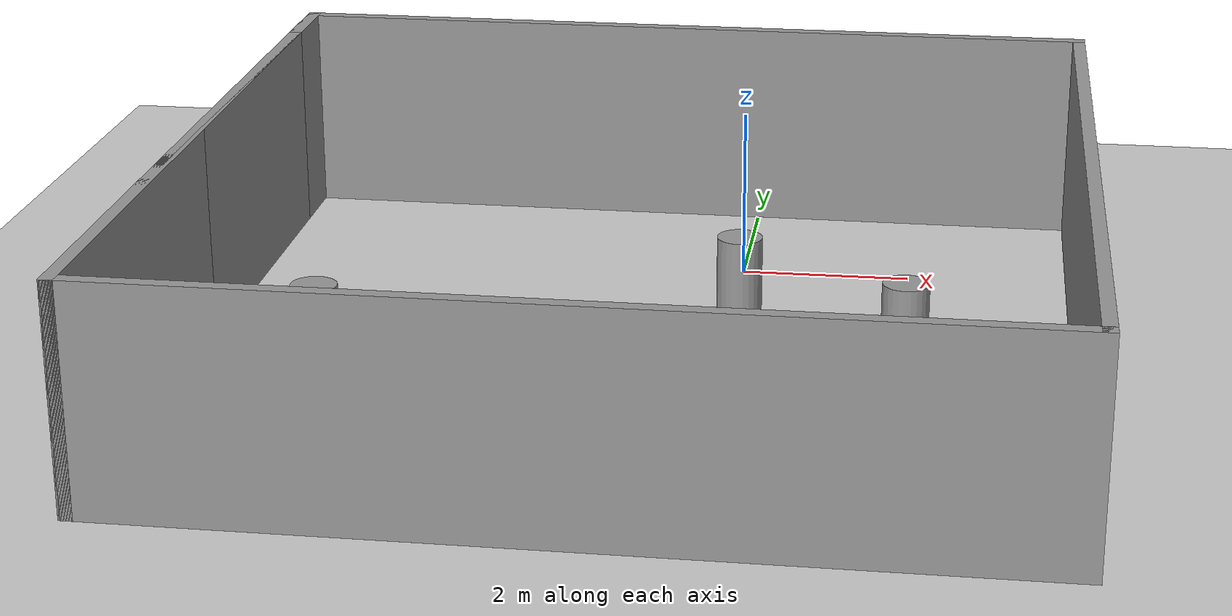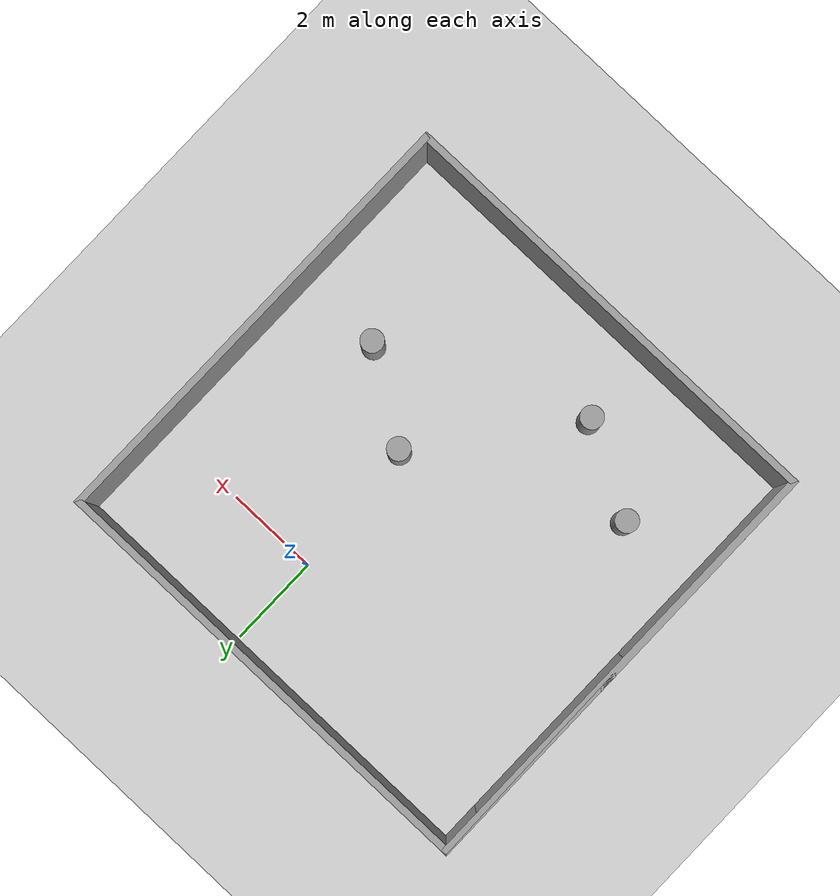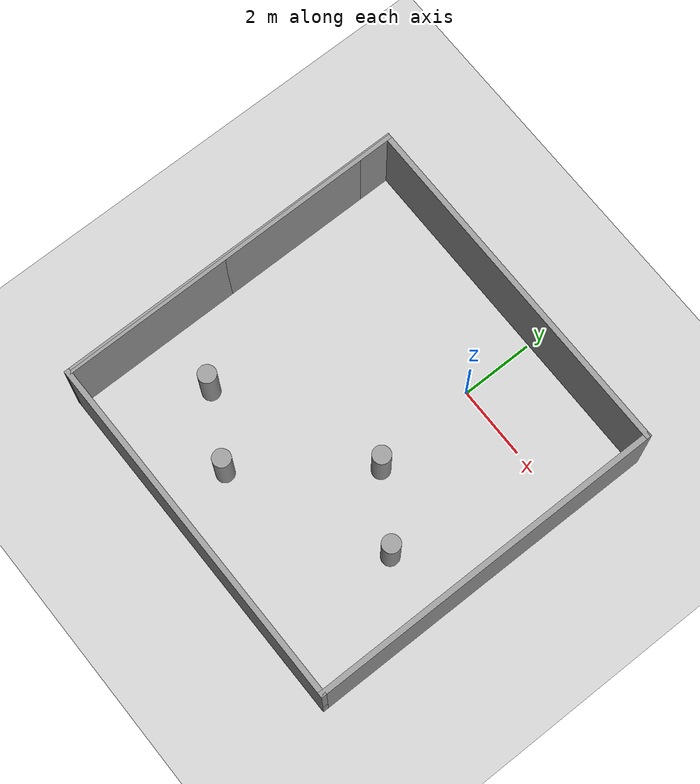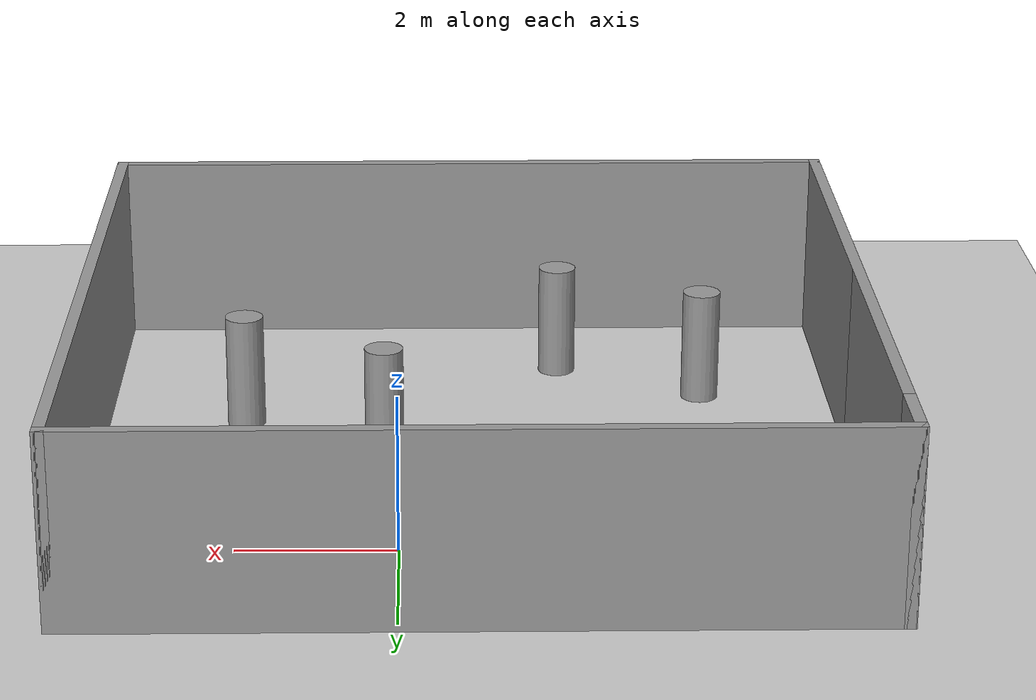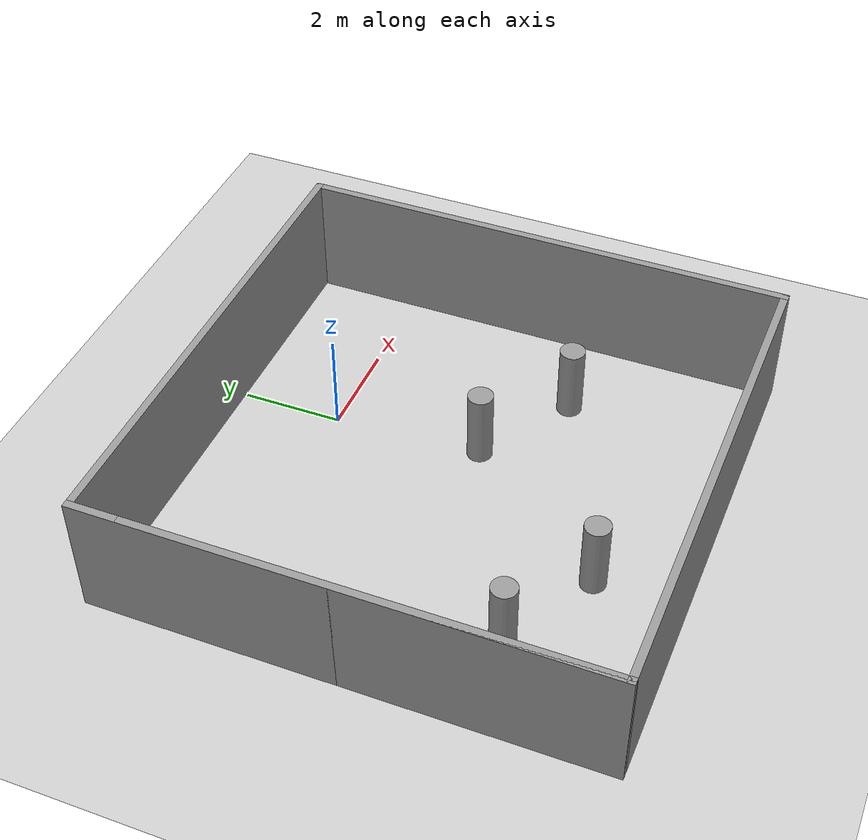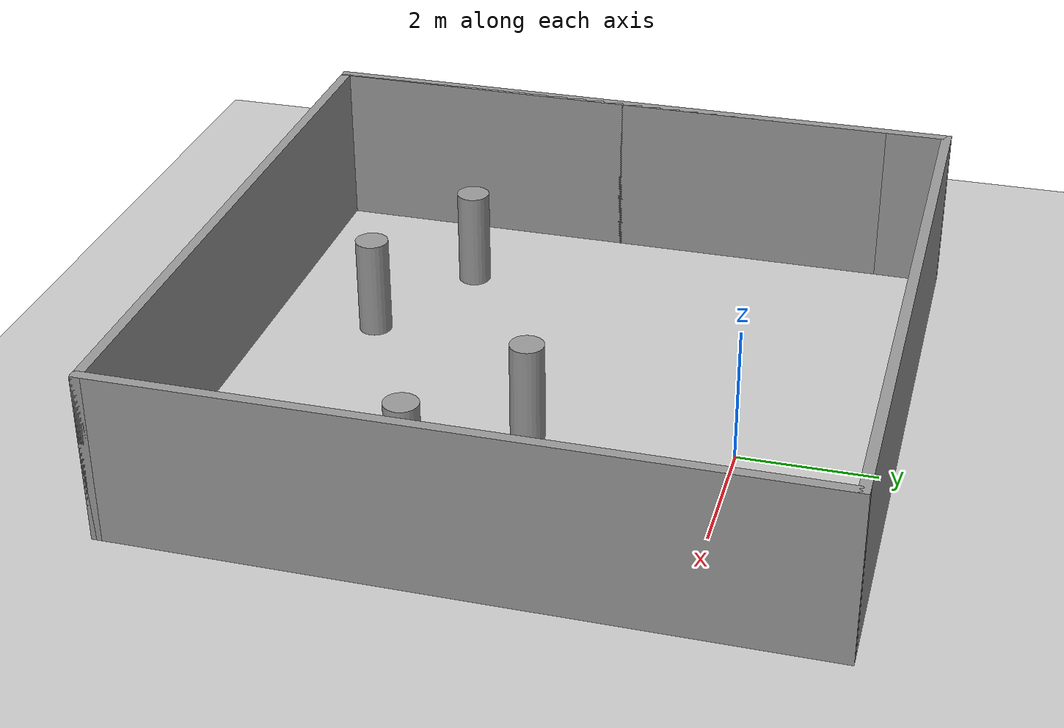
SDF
<sdf version="1.6">
 <world name="default">
  <light name="sun" type="directional">
   <pose>0 0 10 0 -0 0</pose>
   <diffuse>0.8 0.8 0.8 1</diffuse>
   <specular>0.2 0.2 0.2 1</specular>
   <attenuation>
    <range>1000</range>
    <constant>0.9</constant>
    <linear>0.01</linear>
    <quadratic>0.001</quadratic>
   </attenuation>
   <direction>-0.5 0.1 -0.9</direction>
  </light>
  <model name="ground_plane">
   <static>1</static>
   <link name="link">
    <collision name="collision">
     <geometry><plane><normal>0 0 1</normal><size>100 100</size></plane></geometry>
     <surface><friction><ode><mu>100</mu><mu2>50</mu2></ode></friction></surface>
    </collision>
    <visual name="visual">
     <cast_shadows>0</cast_shadows>
     <geometry><plane><normal>0 0 1</normal><size>100 100</size></plane></geometry>
     <material>
      <script><uri>file://media/materials/scripts/gazebo.material</uri><name>Gazebo/Grey</name></script>
     </material>
    </visual>
    <velocity_decay><linear>0</linear><angular>0</angular></velocity_decay>
   </link>
  </model>
  <physics name="default_physics" default="0" type="ode">
   <max_step_size>0.001</max_step_size>
   <real_time_factor>1</real_time_factor>
   <real_time_update_rate>1000</real_time_update_rate>
  </physics>
  <scene><ambient>0.4 0.4 0.4 1</ambient><background>0.7 0.7 0.7 1</background><shadows>1</shadows></scene>
  <spherical_coordinates>
   <surface_model>EARTH_WGS84</surface_model>
   <latitude_deg>0</latitude_deg>
   <longitude_deg>0</longitude_deg>
   <elevation>0</elevation>
   <heading_deg>0</heading_deg>
  </spherical_coordinates>
  <gravity>0 0 -9.8</gravity>
  <magnetic_field>6e-06 2.3e-05 -4.2e-05</magnetic_field>
  <atmosphere type="adiabatic"/>
  <model name="Untitled_0">
   <pose>-0.94713 -2.79924 0 0 -0 0</pose>
   <link name="Wall_10">
    <collision name="Wall_10_Collision">
     <geometry><box><size>9 0.15 2.5</size></box></geometry>
     <pose>0 0 1.25 0 -0 0</pose>
    </collision>
    <visual name="Wall_10_Visual">
     <pose>0 0 1.25 0 -0 0</pose>
     <geometry><box><size>9 0.15 2.5</size></box></geometry>
     <material>
      <script><uri>file://media/materials/scripts/gazebo.material</uri><name>Gazebo/Grey</name></script>
      <ambient>1 1 1 1</ambient>
     </material>
    </visual>
    <pose>-4.925 -0.5 0 0 0 -1.5708</pose>
   </link>
   <link name="Wall_11">
    <collision name="Wall_11_Collision">
     <geometry><box><size>10 0.15 2.5</size></box></geometry>
     <pose>0 0 1.25 0 -0 0</pose>
    </collision>
    <visual name="Wall_11_Visual">
     <pose>0 0 1.25 0 -0 0</pose>
     <geometry><box><size>10 0.15 2.5</size></box></geometry>
     <material>
      <script><uri>file://media/materials/scripts/gazebo.material</uri><name>Gazebo/Grey</name></script>
      <ambient>1 1 1 1</ambient>
     </material>
    </visual>
    <pose>-4.925 0 0 0 -0 1.5708</pose>
   </link>
   <link name="Wall_12">
    <collision name="Wall_12_Collision">
     <geometry><box><size>10 0.15 2.5</size></box></geometry>
     <pose>0 0 1.25 0 -0 0</pose>
    </collision>
    <visual name="Wall_12_Visual">
     <pose>0 0 1.25 0 -0 0</pose>
     <geometry><box><size>10 0.15 2.5</size></box></geometry>
     <material>
      <script><uri>file://media/materials/scripts/gazebo.material</uri><name>Gazebo/Grey</name></script>
      <ambient>1 1 1 1</ambient>
     </material>
    </visual>
    <pose>-4.925 0 0 0 0 -1.5708</pose>
   </link>
   <link name="Wall_13">
    <collision name="Wall_13_Collision">
     <geometry><box><size>10 0.15 2.5</size></box></geometry>
     <pose>0 0 1.25 0 -0 0</pose>
    </collision>
    <visual name="Wall_13_Visual">
     <pose>0 0 1.25 0 -0 0</pose>
     <geometry><box><size>10 0.15 2.5</size></box></geometry>
     <material>
      <script><uri>file://media/materials/scripts/gazebo.material</uri><name>Gazebo/Grey</name></script>
      <ambient>1 1 1 1</ambient>
     </material>
    </visual>
    <pose>-4.925 0 0 0 -0 1.5708</pose>
   </link>
   <link name="Wall_14">
    <collision name="Wall_14_Collision">
     <geometry><box><size>10 0.15 2.5</size></box></geometry>
     <pose>0 0 1.25 0 -0 0</pose>
    </collision>
    <visual name="Wall_14_Visual">
     <pose>0 0 1.25 0 -0 0</pose>
     <geometry><box><size>10 0.15 2.5</size></box></geometry>
     <material>
      <script><uri>file://media/materials/scripts/gazebo.material</uri><name>Gazebo/Grey</name></script>
      <ambient>1 1 1 1</ambient>
     </material>
    </visual>
    <pose>0 4.925 0 0 -0 0</pose>
   </link>
   <link name="Wall_15">
    <collision name="Wall_15_Collision">
     <geometry><box><size>10 0.15 2.5</size></box></geometry>
     <pose>0 0 1.25 0 -0 0</pose>
    </collision>
    <visual name="Wall_15_Visual">
     <pose>0 0 1.25 0 -0 0</pose>
     <geometry><box><size>10 0.15 2.5</size></box></geometry>
     <material>
      <script><uri>file://media/materials/scripts/gazebo.material</uri><name>Gazebo/Grey</name></script>
      <ambient>1 1 1 1</ambient>
     </material>
    </visual>
    <pose>4.925 0 0 0 0 -1.5708</pose>
   </link>
   <link name="Wall_16">
    <collision name="Wall_16_Collision">
     <geometry><box><size>0.15 0.15 2.5</size></box></geometry>
     <pose>0 0 1.25 0 -0 0</pose>
    </collision>
    <visual name="Wall_16_Visual">
     <pose>0 0 1.25 0 -0 0</pose>
     <geometry><box><size>0.15 0.15 2.5</size></box></geometry>
     <material>
      <script><uri>file://media/materials/scripts/gazebo.material</uri><name>Gazebo/Grey</name></script>
      <ambient>1 1 1 1</ambient>
     </material>
    </visual>
    <pose>4.925 -4.925 0 0 -0 0</pose>
   </link>
   <link name="Wall_17">
    <collision name="Wall_17_Collision">
     <geometry><box><size>10 0.15 2.5</size></box></geometry>
     <pose>0 0 1.25 0 -0 0</pose>
    </collision>
    <visual name="Wall_17_Visual">
     <pose>0 0 1.25 0 -0 0</pose>
     <geometry><box><size>10 0.15 2.5</size></box></geometry>
     <material>
      <script><uri>file://media/materials/scripts/gazebo.material</uri><name>Gazebo/Grey</name></script>
      <ambient>1 1 1 1</ambient>
     </material>
    </visual>
    <pose>0 -4.925 0 0 -0 3.14159</pose>
   </link>
   <static>1</static>
  </model>
  <model name="box_1">
   <link name="link">
    <inertial>
     <mass>1</mass>
     <inertia><ixx>0.145833</ixx><ixy>0</ixy><ixz>0</ixz><iyy>0.145833</iyy><iyz>0</iyz><izz>0.125</izz></inertia>
    </inertial>
    <visual name="visual">
     <geometry><cylinder><radius>0.25</radius><length>2</length></cylinder></geometry>
     <material>
      <script><name>Gazebo/Grey</name><uri>file://media/materials/scripts/gazebo.material</uri></script>
      <ambient>0.3 0.3 0.3 1</ambient>
      <diffuse>0.7 0.7 0.7 1</diffuse>
      <specular>0.01 0.01 0.01 1</specular>
      <emissive>0 0 0 1</emissive>
      <shader type="vertex"><normal_map>__default__</normal_map></shader>
     </material>
    </visual>
    <collision name="collision">
     <geometry><cylinder><radius>0.5</radius><length>1</length></cylinder></geometry>
     <surface>
      <friction>
       <ode><mu>1</mu><mu2>1</mu2><fdir1>0 0 0</fdir1><slip1>0</slip1><slip2>0</slip2></ode>
       <torsional>
        <coefficient>1</coefficient>
        <patch_radius>0</patch_radius>
        <surface_radius>0</surface_radius>
        <use_patch_radius>1</use_patch_radius>
        <ode><slip>0</slip></ode>
       </torsional>
      </friction>
      <bounce><restitution_coefficient>0</restitution_coefficient><threshold>1e+06</threshold></bounce>
      <contact>
       <collide_without_contact>0</collide_without_contact>
       <collide_without_contact_bitmask>1</collide_without_contact_bitmask>
       <collide_bitmask>1</collide_bitmask>
       <ode>
        <soft_cfm>0</soft_cfm>
        <soft_erp>0.2</soft_erp>
        <kp>1e+13</kp>
        <kd>1</kd>
        <max_vel>0.01</max_vel>
        <min_depth>0</min_depth>
       </ode>
       <bullet>
        <split_impulse>1</split_impulse>
        <split_impulse_penetration_threshold>-0.01</split_impulse_penetration_threshold>
        <soft_cfm>0</soft_cfm>
        <soft_erp>0.2</soft_erp>
        <kp>1e+13</kp>
        <kd>1</kd>
       </bullet>
      </contact>
     </surface>
    </collision>
   </link>
   <static>0</static>
   <pose>0.214157 -2.93763 0.5 0 -0 0</pose>
  </model>
  <model name="box_2">
   <link name="link">
    <inertial>
     <mass>1</mass>
     <inertia><ixx>0.145833</ixx><ixy>0</ixy><ixz>0</ixz><iyy>0.145833</iyy><iyz>0</iyz><izz>0.125</izz></inertia>
    </inertial>
    <visual name="visual">
     <geometry><cylinder><radius>0.25</radius><length>2</length></cylinder></geometry>
     <material>
      <script><name>Gazebo/Grey</name><uri>file://media/materials/scripts/gazebo.material</uri></script>
      <ambient>0.3 0.3 0.3 1</ambient>
      <diffuse>0.7 0.7 0.7 1</diffuse>
      <specular>0.01 0.01 0.01 1</specular>
      <emissive>0 0 0 1</emissive>
      <shader type="vertex"><normal_map>__default__</normal_map></shader>
     </material>
    </visual>
    <collision name="collision">
     <geometry><cylinder><radius>0.5</radius><length>1</length></cylinder></geometry>
     <surface>
      <friction>
       <ode><mu>1</mu><mu2>1</mu2><fdir1>0 0 0</fdir1><slip1>0</slip1><slip2>0</slip2></ode>
       <torsional>
        <coefficient>1</coefficient>
        <patch_radius>0</patch_radius>
        <surface_radius>0</surface_radius>
        <use_patch_radius>1</use_patch_radius>
        <ode><slip>0</slip></ode>
       </torsional>
      </friction>
      <bounce><restitution_coefficient>0</restitution_coefficient><threshold>1e+06</threshold></bounce>
      <contact>
       <collide_without_contact>0</collide_without_contact>
       <collide_without_contact_bitmask>1</collide_without_contact_bitmask>
       <collide_bitmask>1</collide_bitmask>
       <ode>
        <soft_cfm>0</soft_cfm>
        <soft_erp>0.2</soft_erp>
        <kp>1e+13</kp>
        <kd>1</kd>
        <max_vel>0.01</max_vel>
        <min_depth>0</min_depth>
       </ode>
       <bullet>
        <split_impulse>1</split_impulse>
        <split_impulse_penetration_threshold>-0.01</split_impulse_penetration_threshold>
        <soft_cfm>0</soft_cfm>
        <soft_erp>0.2</soft_erp>
        <kp>1e+13</kp>
        <kd>1</kd>
       </bullet>
      </contact>
     </surface>
    </collision>
   </link>
   <static>0</static>
   <pose>2.07748 -4.13761 0.5 0 -0 0</pose>
  </model>
  <model name="box_3">
   <link name="link">
    <inertial>
     <mass>1</mass>
     <inertia><ixx>0.145833</ixx><ixy>0</ixy><ixz>0</ixz><iyy>0.145833</iyy><iyz>0</iyz><izz>0.125</izz></inertia>
    </inertial>
    <visual name="visual">
     <geometry><cylinder><radius>0.25</radius><length>2</length></cylinder></geometry>
     <material>
      <script><name>Gazebo/Grey</name><uri>file://media/materials/scripts/gazebo.material</uri></script>
      <ambient>0.3 0.3 0.3 1</ambient>
      <diffuse>0.7 0.7 0.7 1</diffuse>
      <specular>0.01 0.01 0.01 1</specular>
      <emissive>0 0 0 1</emissive>
      <shader type="vertex"><normal_map>__default__</normal_map></shader>
     </material>
    </visual>
    <collision name="collision">
     <geometry><cylinder><radius>0.5</radius><length>1</length></cylinder></geometry>
     <surface>
      <friction>
       <ode><mu>1</mu><mu2>1</mu2><fdir1>0 0 0</fdir1><slip1>0</slip1><slip2>0</slip2></ode>
       <torsional>
        <coefficient>1</coefficient>
        <patch_radius>0</patch_radius>
        <surface_radius>0</surface_radius>
        <use_patch_radius>1</use_patch_radius>
        <ode><slip>0</slip></ode>
       </torsional>
      </friction>
      <bounce><restitution_coefficient>0</restitution_coefficient><threshold>1e+06</threshold></bounce>
      <contact>
       <collide_without_contact>0</collide_without_contact>
       <collide_without_contact_bitmask>1</collide_without_contact_bitmask>
       <collide_bitmask>1</collide_bitmask>
       <ode>
        <soft_cfm>0</soft_cfm>
        <soft_erp>0.2</soft_erp>
        <kp>1e+13</kp>
        <kd>1</kd>
        <max_vel>0.01</max_vel>
        <min_depth>0</min_depth>
       </ode>
       <bullet>
        <split_impulse>1</split_impulse>
        <split_impulse_penetration_threshold>-0.01</split_impulse_penetration_threshold>
        <soft_cfm>0</soft_cfm>
        <soft_erp>0.2</soft_erp>
        <kp>1e+13</kp>
        <kd>1</kd>
       </bullet>
      </contact>
     </surface>
    </collision>
   </link>
   <static>0</static>
   <pose>-2.1427 -6.03065 0.5 0 -0 0</pose>
  </model>
  <model name="box_4">
   <link name="link">
    <inertial>
     <mass>1</mass>
     <inertia><ixx>0.145833</ixx><ixy>0</ixy><ixz>0</ixz><iyy>0.145833</iyy><iyz>0</iyz><izz>0.125</izz></inertia>
    </inertial>
    <visual name="visual">
     <geometry><cylinder><radius>0.25</radius><length>2</length></cylinder></geometry>
     <material>
      <script><name>Gazebo/Grey</name><uri>file://media/materials/scripts/gazebo.material</uri></script>
      <ambient>0.3 0.3 0.3 1</ambient>
      <diffuse>0.7 0.7 0.7 1</diffuse>
      <specular>0.01 0.01 0.01 1</specular>
      <emissive>0 0 0 1</emissive>
      <shader type="vertex"><normal_map>__default__</normal_map></shader>
     </material>
    </visual>
    <collision name="collision">
     <geometry><cylinder><radius>0.5</radius><length>1</length></cylinder></geometry>
     <surface>
      <friction>
       <ode><mu>1</mu><mu2>1</mu2><fdir1>0 0 0</fdir1><slip1>0</slip1><slip2>0</slip2></ode>
       <torsional>
        <coefficient>1</coefficient>
        <patch_radius>0</patch_radius>
        <surface_radius>0</surface_radius>
        <use_patch_radius>1</use_patch_radius>
        <ode><slip>0</slip></ode>
       </torsional>
      </friction>
      <bounce><restitution_coefficient>0</restitution_coefficient><threshold>1e+06</threshold></bounce>
      <contact>
       <collide_without_contact>0</collide_without_contact>
       <collide_without_contact_bitmask>1</collide_without_contact_bitmask>
       <collide_bitmask>1</collide_bitmask>
       <ode>
        <soft_cfm>0</soft_cfm>
        <soft_erp>0.2</soft_erp>
        <kp>1e+13</kp>
        <kd>1</kd>
        <max_vel>0.01</max_vel>
        <min_depth>0</min_depth>
       </ode>
       <bullet>
        <split_impulse>1</split_impulse>
        <split_impulse_penetration_threshold>-0.01</split_impulse_penetration_threshold>
        <soft_cfm>0</soft_cfm>
        <soft_erp>0.2</soft_erp>
        <kp>1e+13</kp>
        <kd>1</kd>
       </bullet>
      </contact>
     </surface>
    </collision>
   </link>
   <static>0</static>
   <pose>-4.05971 -5.01117 0.5 0 -0 0</pose>
  </model>
 </world>
</sdf>
